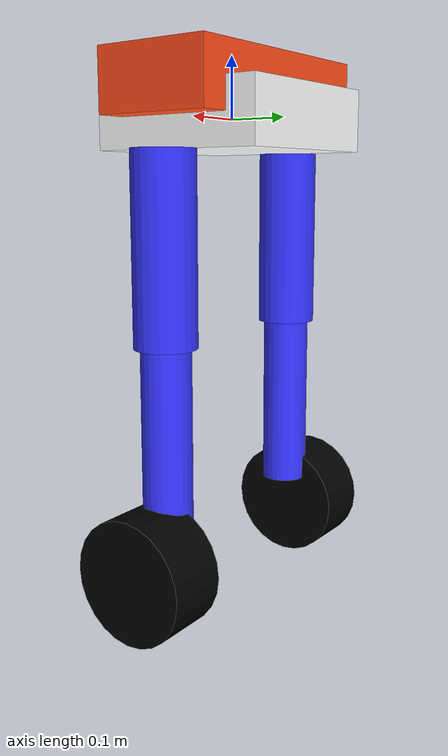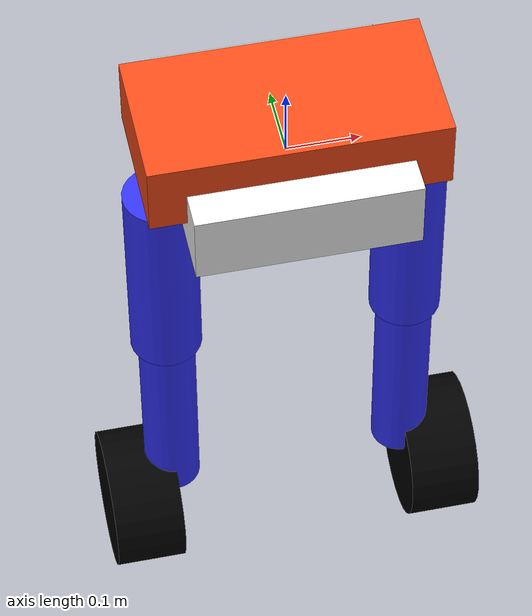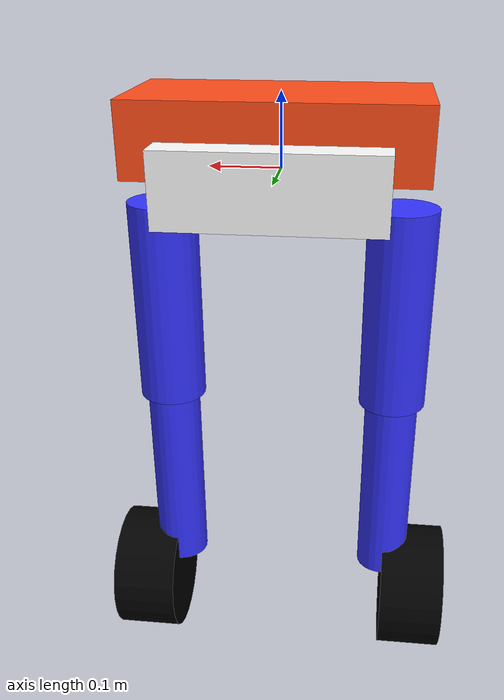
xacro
<?xml version="1.0"?>
<robot xmlns:xacro="http://www.ros.org/wiki/xacro" name="transforming_robot">

    <!-- Define materials -->
    <material name="white">
        <color rgba="1 1 1 1" />
    </material>

    <material name="orange">
        <color rgba="1 0.3 0.1 1"/>
    </material>

    <material name="blue">
        <color rgba="0.2 0.2 1 1"/>
    </material>

    <material name="black">
        <color rgba="0 0 0 1"/>
    </material>

    <!-- Base link -->
    <link name="base_link">
        <visual>
            <geometry>
                <box size="0.3 0.3 0.1"/>
            </geometry>
            <material name="white"/>
        </visual>
        <collision>
            <geometry>
                <box size="0.3 0.3 0.1"/>
            </geometry>
        </collision>
        <inertial>
            <origin xyz="0 0 0"/>
            <mass value="0.7"/>
            <inertia ixx="0.02" ixy="0" ixz="0" iyy="0.02" iyz="0" izz="0.02"/>
        </inertial>
    </link>

    <!-- Chassis link -->
    <link name="chassis">
        <visual>
            <origin xyz="0 0 0.05"/>
            <geometry>
                <box size="0.4 0.2 0.1"/>
            </geometry>
            <material name="orange"/>
        </visual>
        <collision>
            <origin xyz="0 0 0.05"/>
            <geometry>
                <box size="0.4 0.2 0.1"/>
            </geometry>
        </collision>
        <inertial>
            <origin xyz="0 0 0"/>
            <mass value="0.4"/>
            <inertia ixx="0.01" ixy="0" ixz="0" iyy="0.01" iyz="0" izz="0.01"/>
        </inertial>
    </link>

    <!-- Left upper leg link -->
    <link name="left_upper_leg">
        <visual>
            <origin xyz="0 0 -0.15"/>
            <geometry>
                <cylinder length="0.3" radius="0.05"/>
            </geometry>
            <material name="blue"/>
        </visual>
        <collision>
            <origin xyz="0 0 -0.15"/>
            <geometry>
                <cylinder length="0.3" radius="0.05"/>
            </geometry>
        </collision>
        <inertial>
            <origin xyz="0 0 0"/>
            <mass value="0.4"/>
            <inertia ixx="0.002" ixy="0" ixz="0" iyy="0.002" iyz="0" izz="0.002"/>
        </inertial>
    </link>

    <!-- Left lower leg link -->
    <link name="left_lower_leg">
        <visual>
            <origin xyz="0 0 -0.15"/>
            <geometry>
                <cylinder length="0.3" radius="0.04"/>
            </geometry>
            <material name="blue"/>
        </visual>
        <collision>
            <origin xyz="0 0 -0.15"/>
            <geometry>
                <cylinder length="0.3" radius="0.04"/>
            </geometry>
        </collision>
        <inertial>
            <origin xyz="0 0 0"/>
            <mass value="0.25"/>
            <inertia ixx="0.0015" ixy="0" ixz="0" iyy="0.0015" iyz="0" izz="0.0015"/>
        </inertial>
    </link>

    <!-- Left wheel link -->
    <link name="left_wheel">
        <visual>
            <origin xyz="0 0 -0.05"/>
            <geometry>
                <cylinder length="0.1" radius="0.1"/>
            </geometry>
            <material name="black"/>
        </visual>
        <collision>
            <origin xyz="0 0 -0.05"/>
            <geometry>
                <cylinder length="0.1" radius="0.1"/>
            </geometry>
        </collision>
        <inertial>
            <origin xyz="0 0 0"/>
            <mass value="0.2"/>
            <inertia ixx="0.0001" ixy="0" ixz="0" iyy="0.0001" iyz="0" izz="0.0001"/>
        </inertial>
    </link>

    <!-- Right upper leg link -->
    <link name="right_upper_leg">
        <visual>
            <origin xyz="0 0 -0.15"/>
            <geometry>
                <cylinder length="0.3" radius="0.05"/>
            </geometry>
            <material name="blue"/>
        </visual>
        <collision>
            <origin xyz="0 0 -0.15"/>
            <geometry>
                <cylinder length="0.3" radius="0.05"/>
            </geometry>
        </collision>
        <inertial>
            <origin xyz="0 0 0"/>
            <mass value="0.5"/>
            <inertia ixx="0.002" ixy="0" ixz="0" iyy="0.002" iyz="0" izz="0.002"/>
        </inertial>
    </link>

    <!-- Right lower leg link -->
    <link name="right_lower_leg">
        <visual>
            <origin xyz="0 0 -0.15"/>
            <geometry>
                <cylinder length="0.3" radius="0.04"/>
            </geometry>
            <material name="blue"/>
        </visual>
        <collision>
            <origin xyz="0 0 -0.15"/>
            <geometry>
                <cylinder length="0.3" radius="0.04"/>
            </geometry>
        </collision>
        <inertial>
            <origin xyz="0 0 0"/>
            <mass value="0.4"/>
            <inertia ixx="0.0015" ixy="0" ixz="0" iyy="0.0015" iyz="0" izz="0.0015"/>
        </inertial>
    </link>

    <!-- Right wheel link -->
    <link name="right_wheel">
        <visual>
            <origin xyz="0 0 0.05"/>
            <geometry>
                <cylinder length="0.1" radius="0.1"/>
            </geometry>
            <material name="black"/>
        </visual>
        <collision>
            <origin xyz="0 0 0.05"/>
            <geometry>
                <cylinder length="0.1" radius="0.1"/>
            </geometry>
        </collision>
        <inertial>
            <origin xyz="0 0 0"/>
            <mass value="0.2"/>
            <inertia ixx="0.0001" ixy="0" ixz="0" iyy="0.0001" iyz="0" izz="0.0001"/>
        </inertial>
    </link>

    <!-- Joint connecting base link to chassis -->
    <joint name="chassis_joint" type="fixed">
        <parent link="base_link"/>
        <child link="chassis"/>
        <origin xyz="0 0 0" rpy="0 0 0"/>
    </joint>

    <!-- Joint connecting chassis to left upper leg -->
    <joint name="left_upper_leg_joint" type="revolute">
        <parent link="chassis"/>
        <child link="left_upper_leg"/>
        <origin xyz="-0.17 0 -0.05"/>
        <axis xyz="1 0 0"/>
        <limit lower="-1.57" upper="1.57" effort="100" velocity="1"/>
    </joint>

    <!-- Joint connecting left upper leg to left lower leg -->
    <joint name="left_lower_leg_joint" type="revolute">
        <parent link="left_upper_leg"/>
        <child link="left_lower_leg"/>
        <origin xyz="0 0 -0.3"/>
        <axis xyz="1 0 0"/>
        <limit lower="-1.57" upper="1.57" effort="100" velocity="1"/>
    </joint>

    <!-- Joint connecting left lower leg to left wheel -->
    <joint name="left_wheel_joint" type="continuous">
        <parent link="left_lower_leg"/>
        <child link="left_wheel"/>
        <origin xyz="0 0 -0.35" rpy="0 1.5708 0"/>
        <axis xyz="0 0 1"/>
    </joint>

    <!-- Joint connecting chassis to right upper leg -->
    <joint name="right_upper_leg_joint" type="revolute">
        <parent link="chassis"/>
        <child link="right_upper_leg"/>
        <origin xyz="0.17 0 -0.05"/>
        <axis xyz="1 0 0"/>
        <limit lower="-1.57" upper="1.57" effort="100" velocity="1"/>
    </joint>

    <!-- Joint connecting right upper leg to right lower leg -->
    <joint name="right_lower_leg_joint" type="revolute">
        <parent link="right_upper_leg"/>
        <child link="right_lower_leg"/>
        <origin xyz="0 0 -0.3"/>
        <axis xyz="1 0 0"/>
        <limit lower="-1.57" upper="1.57" effort="100" velocity="1"/>
    </joint>

    <!-- Joint connecting right lower leg to right wheel -->
    <joint name="right_wheel_joint" type="continuous">
        <parent link="right_lower_leg"/>
        <child link="right_wheel"/>
        <origin xyz="0 0 -0.35" rpy="0 1.5708 0"/>
        <axis xyz="0 0 1"/>
    </joint>

</robot>
